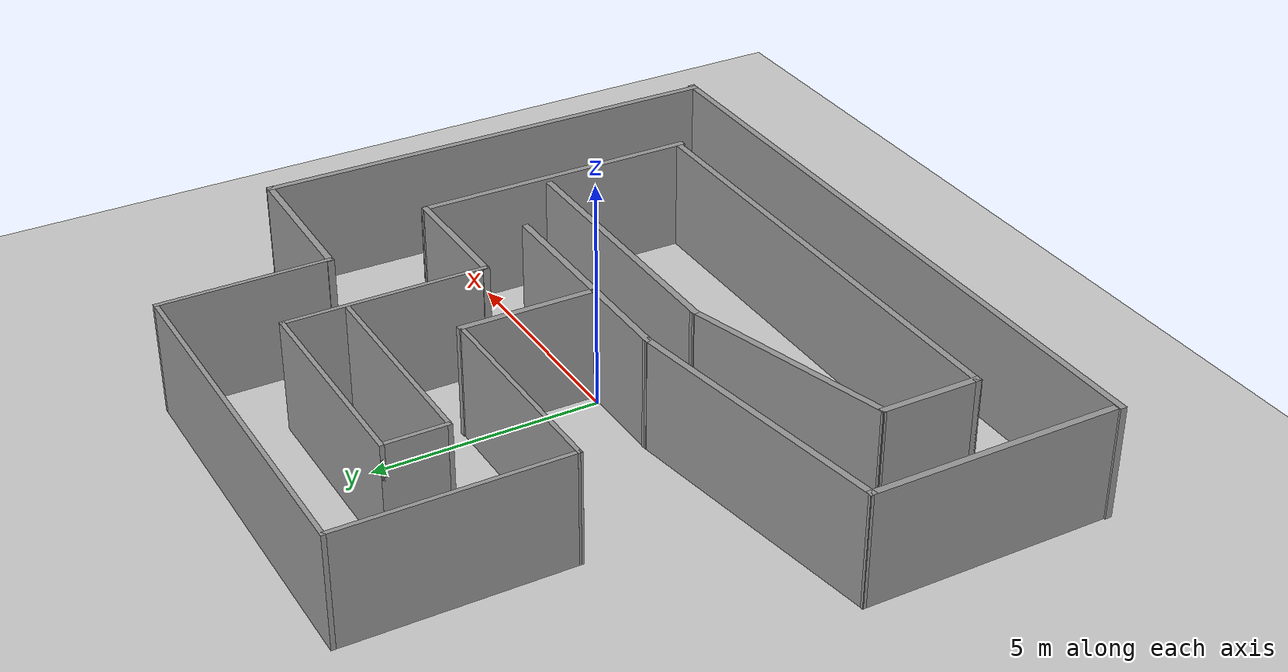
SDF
<sdf version="1.7">
 <world name="default">
  <light name="sun" type="directional">
   <pose>0 0 10 0 -0 0</pose>
   <diffuse>0.8 0.8 0.8 1</diffuse>
   <specular>0.2 0.2 0.2 1</specular>
   <attenuation>
    <range>1000</range>
    <constant>0.9</constant>
    <linear>0.01</linear>
    <quadratic>0.001</quadratic>
   </attenuation>
   <direction>-0.5 0.1 -0.9</direction>
   <spot><inner_angle>0</inner_angle><outer_angle>0</outer_angle><falloff>0</falloff></spot>
  </light>
  <model name="ground_plane">
   <static>1</static>
   <link name="link">
    <collision name="collision">
     <geometry><plane><normal>0 0 1</normal><size>100 100</size></plane></geometry>
     <surface>
      <contact><collide_bitmask>65535</collide_bitmask></contact>
      <friction><ode><mu>100</mu><mu2>50</mu2></ode></friction>
     </surface>
    </collision>
    <visual name="visual">
     <cast_shadows>0</cast_shadows>
     <geometry><plane><normal>0 0 1</normal><size>100 100</size></plane></geometry>
     <material>
      <script><uri>file://media/materials/scripts/gazebo.material</uri><name>Gazebo/Grey</name></script>
     </material>
    </visual>
   </link>
  </model>
  <gravity>0 0 -9.8</gravity>
  <magnetic_field>6e-06 2.3e-05 -4.2e-05</magnetic_field>
  <atmosphere type="adiabatic"/>
  <physics type="ode">
   <max_step_size>0.001</max_step_size>
   <real_time_factor>1</real_time_factor>
   <real_time_update_rate>1000</real_time_update_rate>
  </physics>
  <scene><ambient>0.4 0.4 0.4 1</ambient><background>0.7 0.7 0.7 1</background><shadows>1</shadows></scene>
  <spherical_coordinates>
   <surface_model>EARTH_WGS84</surface_model>
   <latitude_deg>0</latitude_deg>
   <longitude_deg>0</longitude_deg>
   <elevation>0</elevation>
   <heading_deg>0</heading_deg>
  </spherical_coordinates>
  <model name="maze1">
   <pose>-0.296386 0.538404 0 0 -0 0</pose>
   <link name="Wall_15">
    <collision name="Wall_15_Collision">
     <geometry><box><size>4.805 0.1 2.5</size></box></geometry>
     <pose>0 0 1.25 0 -0 0</pose>
    </collision>
    <visual name="Wall_15_Visual">
     <pose>0 0 1.25 0 -0 0</pose>
     <geometry><box><size>4.805 0.1 2.5</size></box></geometry>
     <material>
      <script><uri>file://media/materials/scripts/gazebo.material</uri><name>Gazebo/Grey</name></script>
      <ambient>1 1 1 1</ambient>
     </material>
     <meta><layer>0</layer></meta>
    </visual>
    <pose>0.108193 5.23642 0 0 -0 3.14159</pose>
   </link>
   <link name="Wall_16">
    <collision name="Wall_16_Collision">
     <geometry><box><size>1.45 0.1 2.5</size></box></geometry>
     <pose>0 0 1.25 0 -0 0</pose>
    </collision>
    <visual name="Wall_16_Visual">
     <pose>0 0 1.25 0 -0 0</pose>
     <geometry><box><size>1.45 0.1 2.5</size></box></geometry>
     <material>
      <script><uri>file://media/materials/scripts/gazebo.material</uri><name>Gazebo/Grey</name></script>
      <ambient>1 1 1 1</ambient>
     </material>
     <meta><layer>0</layer></meta>
    </visual>
    <pose>-2.24431 4.56142 0 0 -0 -1.5708</pose>
   </link>
   <link name="Wall_17">
    <collision name="Wall_17_Collision">
     <geometry><box><size>4.80573 0.1 2.5</size></box></geometry>
     <pose>0 0 1.25 0 -0 0</pose>
    </collision>
    <visual name="Wall_17_Visual">
     <pose>0 0 1.25 0 -0 0</pose>
     <geometry><box><size>4.80573 0.1 2.5</size></box></geometry>
     <material>
      <script><uri>file://media/materials/scripts/gazebo.material</uri><name>Gazebo/Grey</name></script>
      <ambient>1 1 1 1</ambient>
     </material>
     <meta><layer>0</layer></meta>
    </visual>
    <pose>0.108193 3.88642 0 0 -0 0</pose>
   </link>
   <link name="Wall_19">
    <collision name="Wall_19_Collision">
     <geometry><box><size>4.47995 0.1 2.5</size></box></geometry>
     <pose>0 0 1.25 0 -0 0</pose>
    </collision>
    <visual name="Wall_19_Visual">
     <pose>0 0 1.25 0 -0 0</pose>
     <geometry><box><size>4.47995 0.1 2.5</size></box></geometry>
     <material>
      <script><uri>file://media/materials/scripts/gazebo.material</uri><name>Gazebo/Grey</name></script>
      <ambient>1 1 1 1</ambient>
     </material>
     <meta><layer>0</layer></meta>
    </visual>
    <pose>2.46069 3.04642 0 0 -0 -1.5708</pose>
   </link>
   <link name="Wall_20">
    <collision name="Wall_20_Collision">
     <geometry><box><size>2.98377 0.15 2.5</size></box></geometry>
     <pose>0 0 1.25 0 -0 0</pose>
    </collision>
    <visual name="Wall_20_Visual">
     <pose>0 0 1.25 0 -0 0</pose>
     <geometry><box><size>2.98377 0.15 2.5</size></box></geometry>
     <material>
      <script><uri>file://media/materials/scripts/gazebo.material</uri><name>Gazebo/Grey</name></script>
      <ambient>1 1 1 1</ambient>
     </material>
     <meta><layer>0</layer></meta>
    </visual>
    <pose>3.87758 0.856449 0 0 -0 1.8e-05</pose>
   </link>
   <link name="Wall_25">
    <collision name="Wall_25_Collision">
     <geometry><box><size>3.785 0.1 2.5</size></box></geometry>
     <pose>0 0 1.25 0 -0 0</pose>
    </collision>
    <visual name="Wall_25_Visual">
     <pose>0 0 1.25 0 -0 0</pose>
     <geometry><box><size>3.785 0.1 2.5</size></box></geometry>
     <material>
      <script><uri>file://media/materials/scripts/gazebo.material</uri><name>Gazebo/Grey</name></script>
      <ambient>1 1 1 1</ambient>
     </material>
     <meta><layer>0</layer></meta>
    </visual>
    <pose>4.30069 5.31692 0 0 -0 1.5708</pose>
   </link>
   <link name="Wall_26">
    <collision name="Wall_26_Collision">
     <geometry><box><size>8.571 0.1 2.5</size></box></geometry>
     <pose>0 0 1.25 0 -0 0</pose>
    </collision>
    <visual name="Wall_26_Visual">
     <pose>0 0 1.25 0 -0 0</pose>
     <geometry><box><size>8.571 0.1 2.5</size></box></geometry>
     <material>
      <script><uri>file://media/materials/scripts/gazebo.material</uri><name>Gazebo/Grey</name></script>
      <ambient>1 1 1 1</ambient>
     </material>
     <meta><layer>0</layer></meta>
    </visual>
    <pose>0.065193 7.15942 0 0 -0 3.14159</pose>
   </link>
   <link name="Wall_27">
    <collision name="Wall_27_Collision">
     <geometry><box><size>5.009 0.1 2.5</size></box></geometry>
     <pose>0 0 1.25 0 -0 0</pose>
    </collision>
    <visual name="Wall_27_Visual">
     <pose>0 0 1.25 0 -0 0</pose>
     <geometry><box><size>5.009 0.1 2.5</size></box></geometry>
     <material>
      <script><uri>file://media/materials/scripts/gazebo.material</uri><name>Gazebo/Grey</name></script>
      <ambient>1 1 1 1</ambient>
     </material>
     <meta><layer>0</layer></meta>
    </visual>
    <pose>-4.17031 4.70492 0 0 -0 -1.5708</pose>
   </link>
   <link name="Wall_28">
    <collision name="Wall_28_Collision">
     <geometry><box><size>4.90493 0.1 2.5</size></box></geometry>
     <pose>0 0 1.25 0 -0 0</pose>
    </collision>
    <visual name="Wall_28_Visual">
     <pose>0 0 1.25 0 -0 0</pose>
     <geometry><box><size>4.90493 0.1 2.5</size></box></geometry>
     <material>
      <script><uri>file://media/materials/scripts/gazebo.material</uri><name>Gazebo/Grey</name></script>
      <ambient>1 1 1 1</ambient>
     </material>
     <meta><layer>0</layer></meta>
    </visual>
    <pose>-1.76787 2.26062 0 0 -0 0.004244</pose>
   </link>
   <link name="Wall_29">
    <collision name="Wall_29_Collision">
     <geometry><box><size>2.98235 0.15 2.5</size></box></geometry>
     <pose>0 0 1.25 0 -0 0</pose>
    </collision>
    <visual name="Wall_29_Visual">
     <pose>0 0 1.25 0 -0 0</pose>
     <geometry><box><size>2.98235 0.15 2.5</size></box></geometry>
     <material>
      <script><uri>file://media/materials/scripts/gazebo.material</uri><name>Gazebo/Grey</name></script>
      <ambient>1 1 1 1</ambient>
     </material>
     <meta><layer>0</layer></meta>
    </visual>
    <pose>0.605152 0.85467 0 0 -0 -1.57717</pose>
   </link>
   <link name="Wall_35">
    <collision name="Wall_35_Collision">
     <geometry><box><size>5.25 0.15 2.5</size></box></geometry>
     <pose>0 0 1.25 0 -0 0</pose>
    </collision>
    <visual name="Wall_35_Visual">
     <pose>0 0 1.25 0 -0 0</pose>
     <geometry><box><size>5.25 0.15 2.5</size></box></geometry>
     <material>
      <script><uri>file://media/materials/scripts/gazebo.material</uri><name>Gazebo/Grey</name></script>
      <ambient>1 1 1 1</ambient>
     </material>
     <meta><layer>0</layer></meta>
    </visual>
    <pose>1.01614 -0.658561 0 0 -0 3.14159</pose>
   </link>
   <link name="Wall_41">
    <collision name="Wall_41_Collision">
     <geometry><box><size>15.5623 0.15 2.5</size></box></geometry>
     <pose>0 0 1.25 0 -0 0</pose>
    </collision>
    <visual name="Wall_41_Visual">
     <pose>0 0 1.25 0 -0 0</pose>
     <geometry><box><size>15.5623 0.15 2.5</size></box></geometry>
     <material>
      <script><uri>file://media/materials/scripts/gazebo.material</uri><name>Gazebo/Grey</name></script>
      <ambient>1 1 1 1</ambient>
     </material>
     <meta><layer>0</layer></meta>
    </visual>
    <pose>-0.04362 -7.11194 0 0 -0 -0.002818</pose>
   </link>
   <link name="Wall_42">
    <collision name="Wall_42_Collision">
     <geometry><box><size>10.6844 0.15 2.5</size></box></geometry>
     <pose>0 0 1.25 0 -0 0</pose>
    </collision>
    <visual name="Wall_42_Visual">
     <pose>0 0 1.25 0 -0 0</pose>
     <geometry><box><size>10.6844 0.15 2.5</size></box></geometry>
     <material>
      <script><uri>file://media/materials/scripts/gazebo.material</uri><name>Gazebo/Grey</name></script>
      <ambient>1 1 1 1</ambient>
     </material>
     <meta><layer>0</layer></meta>
    </visual>
    <pose>7.67409 -1.8667 0 0 -0 1.55673</pose>
   </link>
   <link name="Wall_44">
    <collision name="Wall_44_Collision">
     <geometry><box><size>6.3988 0.15 2.5</size></box></geometry>
     <pose>0 0 1.25 0 -0 0</pose>
    </collision>
    <visual name="Wall_44_Visual">
     <pose>0 0 1.25 0 -0 0</pose>
     <geometry><box><size>6.3988 0.15 2.5</size></box></geometry>
     <material>
      <script><uri>file://media/materials/scripts/gazebo.material</uri><name>Gazebo/Grey</name></script>
      <ambient>1 1 1 1</ambient>
     </material>
     <meta><layer>0</layer></meta>
    </visual>
    <pose>5.29134 -2.26792 0 0 -0 -1.57747</pose>
   </link>
   <link name="Wall_53">
    <collision name="Wall_53_Collision">
     <geometry><box><size>6.25 0.15 2.5</size></box></geometry>
     <pose>0 0 1.25 0 -0 0</pose>
    </collision>
    <visual name="Wall_53_Visual">
     <pose>0 0 1.25 0 -0 0</pose>
     <geometry><box><size>6.25 0.15 2.5</size></box></geometry>
     <material>
      <script><uri>file://media/materials/scripts/gazebo.material</uri><name>Gazebo/Grey</name></script>
      <ambient>1 1 1 1</ambient>
     </material>
     <meta><layer>0</layer></meta>
    </visual>
    <pose>1.96236 -1.97532 0 0 -0 0</pose>
   </link>
   <link name="Wall_55">
    <collision name="Wall_55_Collision">
     <geometry><box><size>3.59864 0.15 2.5</size></box></geometry>
     <pose>0 0 1.25 0 -0 0</pose>
    </collision>
    <visual name="Wall_55_Visual">
     <pose>0 0 1.25 0 -0 0</pose>
     <geometry><box><size>3.59864 0.15 2.5</size></box></geometry>
     <material>
      <script><uri>file://media/materials/scripts/gazebo.material</uri><name>Gazebo/Grey</name></script>
      <ambient>1 1 1 1</ambient>
     </material>
     <meta><layer>0</layer></meta>
    </visual>
    <pose>6.02445 3.43734 0 0 -0 3.12008</pose>
   </link>
   <link name="Wall_61">
    <collision name="Wall_61_Collision">
     <geometry><box><size>4.95445 0.15 2.5</size></box></geometry>
     <pose>0 0 1.25 0 -0 0</pose>
    </collision>
    <visual name="Wall_61_Visual">
     <pose>0 0 1.25 0 -0 0</pose>
     <geometry><box><size>4.95445 0.15 2.5</size></box></geometry>
     <material>
      <script><uri>file://media/materials/scripts/gazebo.material</uri><name>Gazebo/Grey</name></script>
      <ambient>1 1 1 1</ambient>
     </material>
     <meta><layer>0</layer></meta>
    </visual>
    <pose>-3.40643 -2.60295 0 0 -0 0.264341</pose>
   </link>
   <link name="Wall_66">
    <collision name="Wall_66_Collision">
     <geometry><box><size>6.40433 0.15 2.5</size></box></geometry>
     <pose>0 0 1.25 0 -0 0</pose>
    </collision>
    <visual name="Wall_66_Visual">
     <pose>0 0 1.25 0 -0 0</pose>
     <geometry><box><size>6.40433 0.15 2.5</size></box></geometry>
     <material>
      <script><uri>file://media/materials/scripts/gazebo.material</uri><name>Gazebo/Grey</name></script>
      <ambient>1 1 1 1</ambient>
     </material>
     <meta><layer>0</layer></meta>
    </visual>
    <pose>-4.62728 -1.11678 0 0 -0 -2.99454</pose>
   </link>
   <link name="Wall_67">
    <collision name="Wall_67_Collision">
     <geometry><box><size>5.5 0.15 2.5</size></box></geometry>
     <pose>0 0 1.25 0 -0 0</pose>
    </collision>
    <visual name="Wall_67_Visual">
     <pose>0 0 1.25 0 -0 0</pose>
     <geometry><box><size>5.5 0.15 2.5</size></box></geometry>
     <material>
      <script><uri>file://media/materials/scripts/gazebo.material</uri><name>Gazebo/Grey</name></script>
      <ambient>1 1 1 1</ambient>
     </material>
     <meta><layer>0</layer></meta>
    </visual>
    <pose>-7.72069 -4.24999 0 0 -0 -1.5708</pose>
   </link>
   <link name="Wall_69">
    <collision name="Wall_69_Collision">
     <geometry><box><size>2.25 0.15 2.5</size></box></geometry>
     <pose>0 0 1.25 0 -0 0</pose>
    </collision>
    <visual name="Wall_69_Visual">
     <pose>0 0 1.25 0 -0 0</pose>
     <geometry><box><size>2.25 0.15 2.5</size></box></geometry>
     <material>
      <script><uri>file://media/materials/scripts/gazebo.material</uri><name>Gazebo/Grey</name></script>
      <ambient>1 1 1 1</ambient>
     </material>
     <meta><layer>0</layer></meta>
    </visual>
    <pose>-5.72521 -4.28059 0 0 -0 -1.5708</pose>
   </link>
   <link name="Wall_70">
    <collision name="Wall_70_Collision">
     <geometry><box><size>11 0.15 2.5</size></box></geometry>
     <pose>0 0 1.25 0 -0 0</pose>
    </collision>
    <visual name="Wall_70_Visual">
     <pose>0 0 1.25 0 -0 0</pose>
     <geometry><box><size>11 0.15 2.5</size></box></geometry>
     <material>
      <script><uri>file://media/materials/scripts/gazebo.material</uri><name>Gazebo/Grey</name></script>
      <ambient>1 1 1 1</ambient>
     </material>
     <meta><layer>0</layer></meta>
    </visual>
    <pose>-0.300214 -5.33059 0 0 -0 0</pose>
   </link>
   <static>1</static>
  </model>
 </world>
</sdf>
